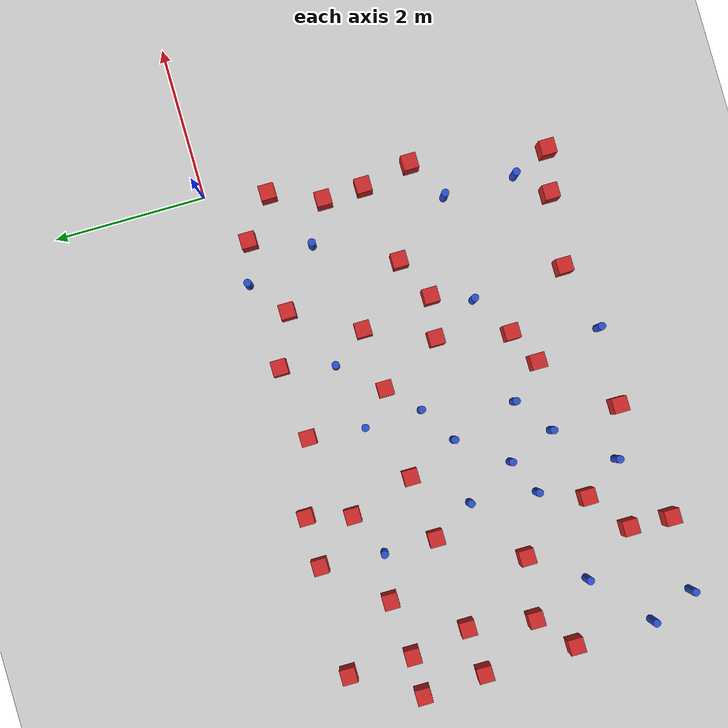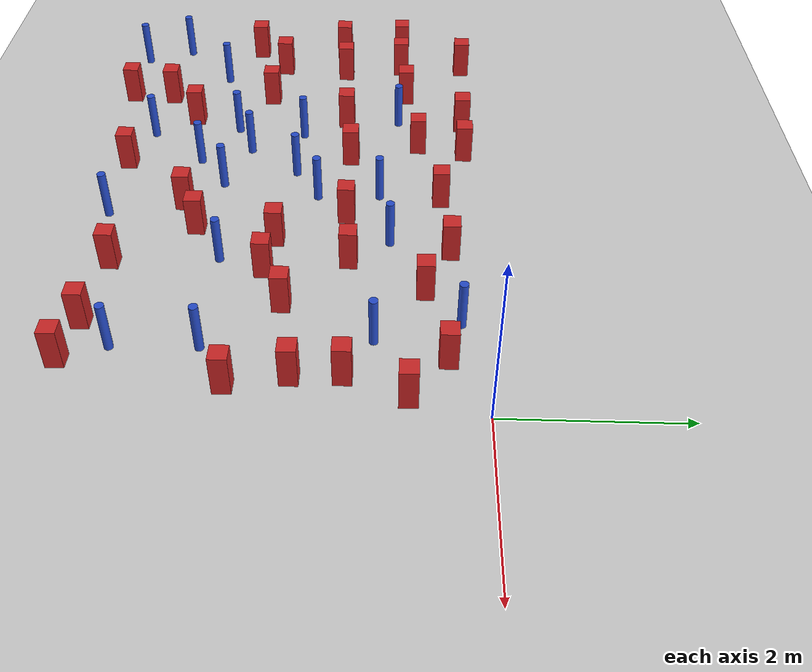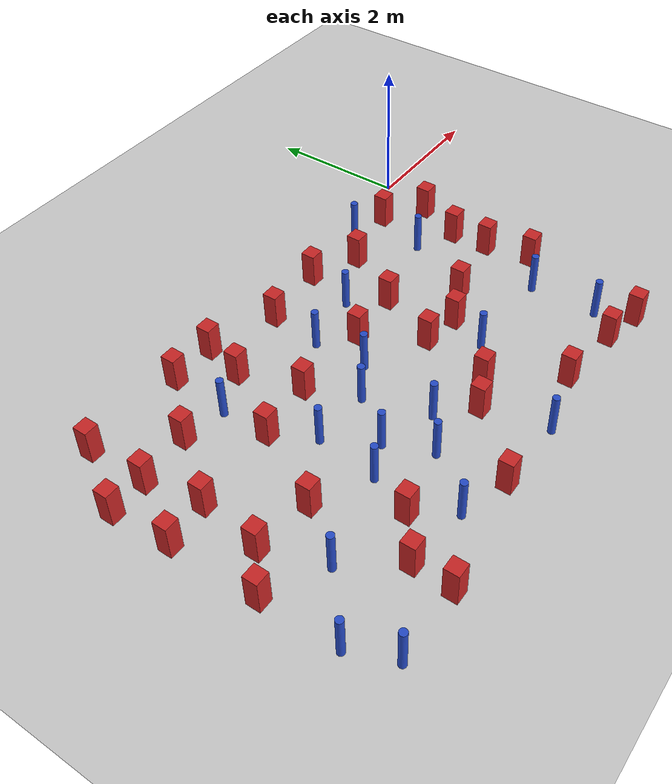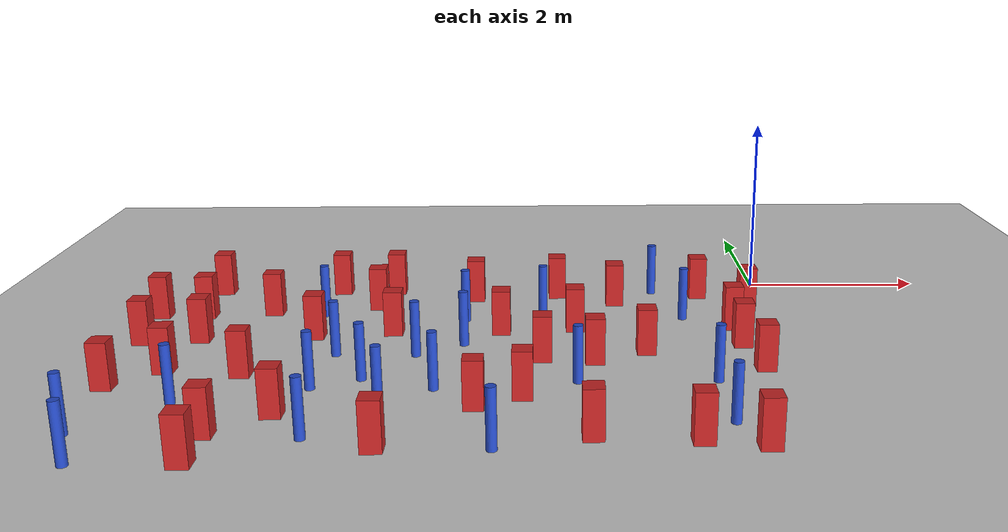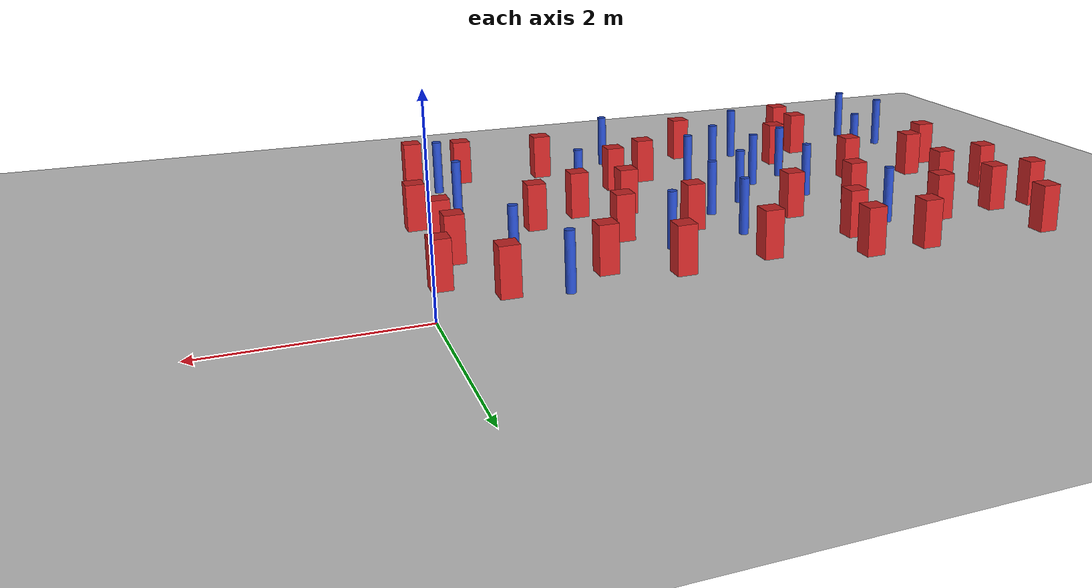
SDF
<sdf version="1.6">
 <world name="default">
  <model name="ground_plane">
   <static>1</static>
   <link name="link">
    <collision name="collision">
     <geometry><plane><normal>0 0 1</normal><size>100 100</size></plane></geometry>
     <surface><friction><ode><mu>100</mu><mu2>50</mu2></ode></friction></surface>
    </collision>
    <visual name="visual">
     <cast_shadows>0</cast_shadows>
     <geometry><plane><normal>0 0 1</normal><size>100 100</size></plane></geometry>
     <material>
      <ambient>1.0 1.0 1.0 1.0</ambient>
      <diffuse>0.8 0.8 0.8 1.0</diffuse>
      <specular>0.01 0.01 0.01 1.000000</specular>
     </material>
    </visual>
   </link>
  </model>
  <model name="square_post_obstacle10">
   <static>true</static>
   <pose>-2.78559075855 -3.33132240373 8.22691968438e-08 7.2212513382e-06 -7.54495500217e-07 2.29674213826e-05</pose>
   <link name="link">
    <pose>0 0 0.25 0 -0 0</pose>
    <inertial>
     <mass>100</mass>
     <inertia>
      <ixx>0.166667</ixx>
      <ixy>0</ixy>
      <ixz>0</ixz>
      <iyy>0.166667</iyy>
      <iyz>0</iyz>
      <izz>0.166667</izz>
     </inertia>
    </inertial>
    <collision name="collision"><geometry><box><size>.2 .2 .5</size></box></geometry></collision>
    <visual name="visual">
     <geometry><box><size>.2 .2 .5</size></box></geometry>
     <material>
      <script><name>Gazebo/Red</name><uri>file://media/materials/scripts/gazebo.material</uri></script>
     </material>
    </visual>
   </link>
  </model>
  <model name="square_post_obstacle14">
   <static>true</static>
   <pose>-6.39441163497 -2.61521872058 8.22691968438e-08 7.2212513382e-06 -7.54495500217e-07 2.29674213826e-05</pose>
   <link name="link">
    <pose>0 0 0.25 0 -0 0</pose>
    <inertial>
     <mass>100</mass>
     <inertia>
      <ixx>0.166667</ixx>
      <ixy>0</ixy>
      <ixz>0</ixz>
      <iyy>0.166667</iyy>
      <iyz>0</iyz>
      <izz>0.166667</izz>
     </inertia>
    </inertial>
    <collision name="collision"><geometry><box><size>.2 .2 .5</size></box></geometry></collision>
    <visual name="visual">
     <geometry><box><size>.2 .2 .5</size></box></geometry>
     <material>
      <script><name>Gazebo/Red</name><uri>file://media/materials/scripts/gazebo.material</uri></script>
     </material>
    </visual>
   </link>
  </model>
  <model name="square_post_obstacle18">
   <static>true</static>
   <pose>-6.41459367247 -0.975588047987 8.22691968438e-08 7.2212513382e-06 -7.54495500217e-07 2.29674213826e-05</pose>
   <link name="link">
    <pose>0 0 0.25 0 -0 0</pose>
    <inertial>
     <mass>100</mass>
     <inertia>
      <ixx>0.166667</ixx>
      <ixy>0</ixy>
      <ixz>0</ixz>
      <iyy>0.166667</iyy>
      <iyz>0</iyz>
      <izz>0.166667</izz>
     </inertia>
    </inertial>
    <collision name="collision"><geometry><box><size>.2 .2 .5</size></box></geometry></collision>
    <visual name="visual">
     <geometry><box><size>.2 .2 .5</size></box></geometry>
     <material>
      <script><name>Gazebo/Red</name><uri>file://media/materials/scripts/gazebo.material</uri></script>
     </material>
    </visual>
   </link>
  </model>
  <model name="pole_obstacle17">
   <static>true</static>
   <pose>-6.59824746613 -4.6418889525 2.88873142074e-08 -9.90536690842e-09 4.60219948965e-07 -1.20965994976e-07</pose>
   <link name="link">
    <pose>0 0 0.3 0 -0 0</pose>
    <inertial>
     <mass>1</mass>
     <inertia><ixx>0.145833</ixx><ixy>0</ixy><ixz>0</ixz><iyy>0.145833</iyy><iyz>0</iyz><izz>0.125</izz></inertia>
    </inertial>
    <collision name="collision">
     <geometry><cylinder><radius>0.05</radius><length>.6</length></cylinder></geometry>
    </collision>
    <visual name="visual">
     <geometry><cylinder><radius>0.05</radius><length>.6</length></cylinder></geometry>
     <material>
      <script><name>Gazebo/Blue</name><uri>file://media/materials/scripts/gazebo.material</uri></script>
     </material>
    </visual>
   </link>
  </model>
  <model name="pole_obstacle19">
   <static>true</static>
   <pose>-4.85081683352 -3.09293828885 2.88873142074e-08 -9.90536690245e-09 4.6021994898e-07 -1.20965994966e-07</pose>
   <link name="link">
    <pose>0 0 0.3 0 -0 0</pose>
    <inertial>
     <mass>1</mass>
     <inertia><ixx>0.145833</ixx><ixy>0</ixy><ixz>0</ixz><iyy>0.145833</iyy><iyz>0</iyz><izz>0.125</izz></inertia>
    </inertial>
    <collision name="collision">
     <geometry><cylinder><radius>0.05</radius><length>.6</length></cylinder></geometry>
    </collision>
    <visual name="visual">
     <geometry><cylinder><radius>0.05</radius><length>.6</length></cylinder></geometry>
     <material>
      <script><name>Gazebo/Blue</name><uri>file://media/materials/scripts/gazebo.material</uri></script>
     </material>
    </visual>
   </link>
  </model>
  <model name="pole_obstacle21">
   <static>true</static>
   <pose>-5.06106699492 -0.991384612624 2.88873142074e-08 -9.90536689779e-09 4.60219948991e-07 -1.20965994959e-07</pose>
   <link name="link">
    <pose>0 0 0.3 0 -0 0</pose>
    <inertial>
     <mass>1</mass>
     <inertia><ixx>0.145833</ixx><ixy>0</ixy><ixz>0</ixz><iyy>0.145833</iyy><iyz>0</iyz><izz>0.125</izz></inertia>
    </inertial>
    <collision name="collision">
     <geometry><cylinder><radius>0.05</radius><length>.6</length></cylinder></geometry>
    </collision>
    <visual name="visual">
     <geometry><cylinder><radius>0.05</radius><length>.6</length></cylinder></geometry>
     <material>
      <script><name>Gazebo/Blue</name><uri>file://media/materials/scripts/gazebo.material</uri></script>
     </material>
    </visual>
   </link>
  </model>
  <model name="square_post_obstacle31">
   <static>true</static>
   <pose>-5.07792433073 -3.68747518192 8.22691968438e-08 7.2212513382e-06 -7.54495500217e-07 2.29674213826e-05</pose>
   <link name="link">
    <pose>0 0 0.25 0 -0 0</pose>
    <inertial>
     <mass>100</mass>
     <inertia>
      <ixx>0.166667</ixx>
      <ixy>0</ixy>
      <ixz>0</ixz>
      <iyy>0.166667</iyy>
      <iyz>0</iyz>
      <izz>0.166667</izz>
     </inertia>
    </inertial>
    <collision name="collision"><geometry><box><size>.2 .2 .5</size></box></geometry></collision>
    <visual name="visual">
     <geometry><box><size>.2 .2 .5</size></box></geometry>
     <material>
      <script><name>Gazebo/Red</name><uri>file://media/materials/scripts/gazebo.material</uri></script>
     </material>
    </visual>
   </link>
  </model>
  <model name="pole_obstacle26">
   <static>true</static>
   <pose>-2.58299701818 -1.05074833231 2.88873142074e-08 -9.90536689395e-09 4.60219949e-07 -1.20965994953e-07</pose>
   <link name="link">
    <pose>0 0 0.3 0 -0 0</pose>
    <inertial>
     <mass>1</mass>
     <inertia><ixx>0.145833</ixx><ixy>0</ixy><ixz>0</ixz><iyy>0.145833</iyy><iyz>0</iyz><izz>0.125</izz></inertia>
    </inertial>
    <collision name="collision">
     <geometry><cylinder><radius>0.05</radius><length>.6</length></cylinder></geometry>
    </collision>
    <visual name="visual">
     <geometry><cylinder><radius>0.05</radius><length>.6</length></cylinder></geometry>
     <material>
      <script><name>Gazebo/Blue</name><uri>file://media/materials/scripts/gazebo.material</uri></script>
     </material>
    </visual>
   </link>
  </model>
  <model name="square_post_obstacle33">
   <static>true</static>
   <pose>-5.59800301135 -4.09717236671 8.22691968438e-08 7.2212513382e-06 -7.54495500217e-07 2.29674213826e-05</pose>
   <link name="link">
    <pose>0 0 0.25 0 -0 0</pose>
    <inertial>
     <mass>100</mass>
     <inertia>
      <ixx>0.166667</ixx>
      <ixy>0</ixy>
      <ixz>0</ixz>
      <iyy>0.166667</iyy>
      <iyz>0</iyz>
      <izz>0.166667</izz>
     </inertia>
    </inertial>
    <collision name="collision"><geometry><box><size>.2 .2 .5</size></box></geometry></collision>
    <visual name="visual">
     <geometry><box><size>.2 .2 .5</size></box></geometry>
     <material>
      <script><name>Gazebo/Red</name><uri>file://media/materials/scripts/gazebo.material</uri></script>
     </material>
    </visual>
   </link>
  </model>
  <model name="square_post_obstacle38">
   <static>true</static>
   <pose>-0.20589223049 -0.816321470257 8.22691968438e-08 7.2212513382e-06 -7.54495500217e-07 2.29674213826e-05</pose>
   <link name="link">
    <pose>0 0 0.25 0 -0 0</pose>
    <inertial>
     <mass>100</mass>
     <inertia>
      <ixx>0.166667</ixx>
      <ixy>0</ixy>
      <ixz>0</ixz>
      <iyy>0.166667</iyy>
      <iyz>0</iyz>
      <izz>0.166667</izz>
     </inertia>
    </inertial>
    <collision name="collision"><geometry><box><size>.2 .2 .5</size></box></geometry></collision>
    <visual name="visual">
     <geometry><box><size>.2 .2 .5</size></box></geometry>
     <material>
      <script><name>Gazebo/Red</name><uri>file://media/materials/scripts/gazebo.material</uri></script>
     </material>
    </visual>
   </link>
  </model>
  <model name="square_post_obstacle40">
   <static>true</static>
   <pose>-4.21648005621 -1.58140720932 8.22691968438e-08 7.2212513382e-06 -7.54495500217e-07 2.29674213826e-05</pose>
   <link name="link">
    <pose>0 0 0.25 0 -0 0</pose>
    <inertial>
     <mass>100</mass>
     <inertia>
      <ixx>0.166667</ixx>
      <ixy>0</ixy>
      <ixz>0</ixz>
      <iyy>0.166667</iyy>
      <iyz>0</iyz>
      <izz>0.166667</izz>
     </inertia>
    </inertial>
    <collision name="collision"><geometry><box><size>.2 .2 .5</size></box></geometry></collision>
    <visual name="visual">
     <geometry><box><size>.2 .2 .5</size></box></geometry>
     <material>
      <script><name>Gazebo/Red</name><uri>file://media/materials/scripts/gazebo.material</uri></script>
     </material>
    </visual>
   </link>
  </model>
  <model name="square_post_obstacle51">
   <static>true</static>
   <pose>-0.63707785975 -4.42804001324 8.22691968438e-08 7.22125133819e-06 -7.54495500217e-07 2.29674213826e-05</pose>
   <link name="link">
    <pose>0 0 0.25 0 -0 0</pose>
    <inertial>
     <mass>100</mass>
     <inertia>
      <ixx>0.166667</ixx>
      <ixy>0</ixy>
      <ixz>0</ixz>
      <iyy>0.166667</iyy>
      <iyz>0</iyz>
      <izz>0.166667</izz>
     </inertia>
    </inertial>
    <collision name="collision"><geometry><box><size>.2 .2 .5</size></box></geometry></collision>
    <visual name="visual">
     <geometry><box><size>.2 .2 .5</size></box></geometry>
     <material>
      <script><name>Gazebo/Red</name><uri>file://media/materials/scripts/gazebo.material</uri></script>
     </material>
    </visual>
   </link>
  </model>
  <model name="pole_obstacle52">
   <static>true</static>
   <pose>-3.9111672363 -2.24839501386 2.88873142074e-08 -9.90536690232e-09 4.6021994898e-07 -1.20965994968e-07</pose>
   <link name="link">
    <pose>0 0 0.3 0 -0 0</pose>
    <inertial>
     <mass>1</mass>
     <inertia><ixx>0.145833</ixx><ixy>0</ixy><ixz>0</ixz><iyy>0.145833</iyy><iyz>0</iyz><izz>0.125</izz></inertia>
    </inertial>
    <collision name="collision">
     <geometry><cylinder><radius>0.05</radius><length>.6</length></cylinder></geometry>
    </collision>
    <visual name="visual">
     <geometry><cylinder><radius>0.05</radius><length>.6</length></cylinder></geometry>
     <material>
      <script><name>Gazebo/Blue</name><uri>file://media/materials/scripts/gazebo.material</uri></script>
     </material>
    </visual>
   </link>
  </model>
  <model name="square_post_obstacle58">
   <static>true</static>
   <pose>-0.335179891042 -2.67567891091 8.22691968438e-08 7.2212513382e-06 -7.54495500217e-07 2.29674213826e-05</pose>
   <link name="link">
    <pose>0 0 0.25 0 -0 0</pose>
    <inertial>
     <mass>100</mass>
     <inertia>
      <ixx>0.166667</ixx>
      <ixy>0</ixy>
      <ixz>0</ixz>
      <iyy>0.166667</iyy>
      <iyz>0</iyz>
      <izz>0.166667</izz>
     </inertia>
    </inertial>
    <collision name="collision"><geometry><box><size>.2 .2 .5</size></box></geometry></collision>
    <visual name="visual">
     <geometry><box><size>.2 .2 .5</size></box></geometry>
     <material>
      <script><name>Gazebo/Red</name><uri>file://media/materials/scripts/gazebo.material</uri></script>
     </material>
    </visual>
   </link>
  </model>
  <model name="square_post_obstacle60">
   <static>true</static>
   <pose>-2.23137943399 -1.51244653684 8.22691968438e-08 7.2212513382e-06 -7.54495500217e-07 2.29674213826e-05</pose>
   <link name="link">
    <pose>0 0 0.25 0 -0 0</pose>
    <inertial>
     <mass>100</mass>
     <inertia>
      <ixx>0.166667</ixx>
      <ixy>0</ixy>
      <ixz>0</ixz>
      <iyy>0.166667</iyy>
      <iyz>0</iyz>
      <izz>0.166667</izz>
     </inertia>
    </inertial>
    <collision name="collision"><geometry><box><size>.2 .2 .5</size></box></geometry></collision>
    <visual name="visual">
     <geometry><box><size>.2 .2 .5</size></box></geometry>
     <material>
      <script><name>Gazebo/Red</name><uri>file://media/materials/scripts/gazebo.material</uri></script>
     </material>
    </visual>
   </link>
  </model>
  <model name="pole_obstacle65">
   <static>true</static>
   <pose>-4.13900676323 -3.48934007749 2.88873142074e-08 -9.90536690245e-09 4.6021994898e-07 -1.20965994966e-07</pose>
   <link name="link">
    <pose>0 0 0.3 0 -0 0</pose>
    <inertial>
     <mass>1</mass>
     <inertia><ixx>0.145833</ixx><ixy>0</ixy><ixz>0</ixz><iyy>0.145833</iyy><iyz>0</iyz><izz>0.125</izz></inertia>
    </inertial>
    <collision name="collision">
     <geometry><cylinder><radius>0.05</radius><length>.6</length></cylinder></geometry>
    </collision>
    <visual name="visual">
     <geometry><cylinder><radius>0.05</radius><length>.6</length></cylinder></geometry>
     <material>
      <script><name>Gazebo/Blue</name><uri>file://media/materials/scripts/gazebo.material</uri></script>
     </material>
    </visual>
   </link>
  </model>
  <model name="square_post_obstacle68">
   <static>true</static>
   <pose>-2.41099590357 -0.352183759905 8.22691968438e-08 7.2212513382e-06 -7.54495500217e-07 2.29674213826e-05</pose>
   <link name="link">
    <pose>0 0 0.25 0 -0 0</pose>
    <inertial>
     <mass>100</mass>
     <inertia>
      <ixx>0.166667</ixx>
      <ixy>0</ixy>
      <ixz>0</ixz>
      <iyy>0.166667</iyy>
      <iyz>0</iyz>
      <izz>0.166667</izz>
     </inertia>
    </inertial>
    <collision name="collision"><geometry><box><size>.2 .2 .5</size></box></geometry></collision>
    <visual name="visual">
     <geometry><box><size>.2 .2 .5</size></box></geometry>
     <material>
      <script><name>Gazebo/Red</name><uri>file://media/materials/scripts/gazebo.material</uri></script>
     </material>
    </visual>
   </link>
  </model>
  <model name="pole_obstacle66">
   <static>true</static>
   <pose>-2.24665163517 -2.98889182283 2.88873142074e-08 -9.90536690232e-09 4.6021994898e-07 -1.20965994968e-07</pose>
   <link name="link">
    <pose>0 0 0.3 0 -0 0</pose>
    <inertial>
     <mass>1</mass>
     <inertia><ixx>0.145833</ixx><ixy>0</ixy><ixz>0</ixz><iyy>0.145833</iyy><iyz>0</iyz><izz>0.125</izz></inertia>
    </inertial>
    <collision name="collision">
     <geometry><cylinder><radius>0.05</radius><length>.6</length></cylinder></geometry>
    </collision>
    <visual name="visual">
     <geometry><cylinder><radius>0.05</radius><length>.6</length></cylinder></geometry>
     <material>
      <script><name>Gazebo/Blue</name><uri>file://media/materials/scripts/gazebo.material</uri></script>
     </material>
    </visual>
   </link>
  </model>
  <model name="square_post_obstacle70">
   <static>true</static>
   <pose>-4.34064216586 -0.150044677516 8.22691968438e-08 7.2212513382e-06 -7.54495500217e-07 2.29674213826e-05</pose>
   <link name="link">
    <pose>0 0 0.25 0 -0 0</pose>
    <inertial>
     <mass>100</mass>
     <inertia>
      <ixx>0.166667</ixx>
      <ixy>0</ixy>
      <ixz>0</ixz>
      <iyy>0.166667</iyy>
      <iyz>0</iyz>
      <izz>0.166667</izz>
     </inertia>
    </inertial>
    <collision name="collision"><geometry><box><size>.2 .2 .5</size></box></geometry></collision>
    <visual name="visual">
     <geometry><box><size>.2 .2 .5</size></box></geometry>
     <material>
      <script><name>Gazebo/Red</name><uri>file://media/materials/scripts/gazebo.material</uri></script>
     </material>
    </visual>
   </link>
  </model>
  <model name="square_post_obstacle81">
   <static>true</static>
   <pose>-3.373905149 -0.453993985723 8.22691968438e-08 7.22125133819e-06 -7.54495500217e-07 2.29674213826e-05</pose>
   <link name="link">
    <pose>0 0 0.25 0 -0 0</pose>
    <inertial>
     <mass>100</mass>
     <inertia>
      <ixx>0.166667</ixx>
      <ixy>0</ixy>
      <ixz>0</ixz>
      <iyy>0.166667</iyy>
      <iyz>0</iyz>
      <izz>0.166667</izz>
     </inertia>
    </inertial>
    <collision name="collision"><geometry><box><size>.2 .2 .5</size></box></geometry></collision>
    <visual name="visual">
     <geometry><box><size>.2 .2 .5</size></box></geometry>
     <material>
      <script><name>Gazebo/Red</name><uri>file://media/materials/scripts/gazebo.material</uri></script>
     </material>
    </visual>
   </link>
  </model>
  <model name="square_post_obstacle85">
   <static>true</static>
   <pose>-3.23977587214 -3.55142330103 8.22691968438e-08 7.2212513382e-06 -7.54495500217e-07 2.29674213826e-05</pose>
   <link name="link">
    <pose>0 0 0.25 0 -0 0</pose>
    <inertial>
     <mass>100</mass>
     <inertia>
      <ixx>0.166667</ixx>
      <ixy>0</ixy>
      <ixz>0</ixz>
      <iyy>0.166667</iyy>
      <iyz>0</iyz>
      <izz>0.166667</izz>
     </inertia>
    </inertial>
    <collision name="collision"><geometry><box><size>.2 .2 .5</size></box></geometry></collision>
    <visual name="visual">
     <geometry><box><size>.2 .2 .5</size></box></geometry>
     <material>
      <script><name>Gazebo/Red</name><uri>file://media/materials/scripts/gazebo.material</uri></script>
     </material>
    </visual>
   </link>
  </model>
  <model name="square_post_obstacle93">
   <static>true</static>
   <pose>-6.8806758111 -1.7991468774 8.22691968438e-08 7.2212513382e-06 -7.54495500217e-07 2.29674213826e-05</pose>
   <link name="link">
    <pose>0 0 0.25 0 -0 0</pose>
    <inertial>
     <mass>100</mass>
     <inertia>
      <ixx>0.166667</ixx>
      <ixy>0</ixy>
      <ixz>0</ixz>
      <iyy>0.166667</iyy>
      <iyz>0</iyz>
      <izz>0.166667</izz>
     </inertia>
    </inertial>
    <collision name="collision"><geometry><box><size>.2 .2 .5</size></box></geometry></collision>
    <visual name="visual">
     <geometry><box><size>.2 .2 .5</size></box></geometry>
     <material>
      <script><name>Gazebo/Red</name><uri>file://media/materials/scripts/gazebo.material</uri></script>
     </material>
    </visual>
   </link>
  </model>
  <model name="square_post_obstacle99">
   <static>true</static>
   <pose>-6.42279671032 -0.124154419328 8.22691968438e-08 7.2212513382e-06 -7.54495500217e-07 2.29674213826e-05</pose>
   <link name="link">
    <pose>0 0 0.25 0 -0 0</pose>
    <inertial>
     <mass>100</mass>
     <inertia>
      <ixx>0.166667</ixx>
      <ixy>0</ixy>
      <ixz>0</ixz>
      <iyy>0.166667</iyy>
      <iyz>0</iyz>
      <izz>0.166667</izz>
     </inertia>
    </inertial>
    <collision name="collision"><geometry><box><size>.2 .2 .5</size></box></geometry></collision>
    <visual name="visual">
     <geometry><box><size>.2 .2 .5</size></box></geometry>
     <material>
      <script><name>Gazebo/Red</name><uri>file://media/materials/scripts/gazebo.material</uri></script>
     </material>
    </visual>
   </link>
  </model>
  <model name="pole_obstacle113">
   <static>true</static>
   <pose>-3.4517055459 -1.19593047552 2.88873142074e-08 -9.90536691123e-09 4.60219948959e-07 -1.20965994982e-07</pose>
   <link name="link">
    <pose>0 0 0.3 0 -0 0</pose>
    <inertial>
     <mass>1</mass>
     <inertia><ixx>0.145833</ixx><ixy>0</ixy><ixz>0</ixz><iyy>0.145833</iyy><iyz>0</iyz><izz>0.125</izz></inertia>
    </inertial>
    <collision name="collision">
     <geometry><cylinder><radius>0.05</radius><length>.6</length></cylinder></geometry>
    </collision>
    <visual name="visual">
     <geometry><cylinder><radius>0.05</radius><length>.6</length></cylinder></geometry>
     <material>
      <script><name>Gazebo/Blue</name><uri>file://media/materials/scripts/gazebo.material</uri></script>
     </material>
    </visual>
   </link>
  </model>
  <model name="square_post_obstacle100">
   <static>true</static>
   <pose>-0.733383960362 -0.41028231656 8.22691968438e-08 7.2212513382e-06 -7.54495500217e-07 2.29674213826e-05</pose>
   <link name="link">
    <pose>0 0 0.25 0 -0 0</pose>
    <inertial>
     <mass>100</mass>
     <inertia>
      <ixx>0.166667</ixx>
      <ixy>0</ixy>
      <ixz>0</ixz>
      <iyy>0.166667</iyy>
      <iyz>0</iyz>
      <izz>0.166667</izz>
     </inertia>
    </inertial>
    <collision name="collision"><geometry><box><size>.2 .2 .5</size></box></geometry></collision>
    <visual name="visual">
     <geometry><box><size>.2 .2 .5</size></box></geometry>
     <material>
      <script><name>Gazebo/Red</name><uri>file://media/materials/scripts/gazebo.material</uri></script>
     </material>
    </visual>
   </link>
  </model>
  <model name="pole_obstacle118">
   <static>true</static>
   <pose>-0.846279114026 -3.94113217549 2.88873142074e-08 -9.90536689636e-09 4.60219948994e-07 -1.20965994958e-07</pose>
   <link name="link">
    <pose>0 0 0.3 0 -0 0</pose>
    <inertial>
     <mass>1</mass>
     <inertia><ixx>0.145833</ixx><ixy>0</ixy><ixz>0</ixz><iyy>0.145833</iyy><iyz>0</iyz><izz>0.125</izz></inertia>
    </inertial>
    <collision name="collision">
     <geometry><cylinder><radius>0.05</radius><length>.6</length></cylinder></geometry>
    </collision>
    <visual name="visual">
     <geometry><cylinder><radius>0.05</radius><length>.6</length></cylinder></geometry>
     <material>
      <script><name>Gazebo/Blue</name><uri>file://media/materials/scripts/gazebo.material</uri></script>
     </material>
    </visual>
   </link>
  </model>
  <model name="square_post_obstacle103">
   <static>true</static>
   <pose>-3.04043513643 -1.57700565032 8.22691968438e-08 7.2212513382e-06 -7.54495500217e-07 2.29674213826e-05</pose>
   <link name="link">
    <pose>0 0 0.25 0 -0 0</pose>
    <inertial>
     <mass>100</mass>
     <inertia>
      <ixx>0.166667</ixx>
      <ixy>0</ixy>
      <ixz>0</ixz>
      <iyy>0.166667</iyy>
      <iyz>0</iyz>
      <izz>0.166667</izz>
     </inertia>
    </inertial>
    <collision name="collision"><geometry><box><size>.2 .2 .5</size></box></geometry></collision>
    <visual name="visual">
     <geometry><box><size>.2 .2 .5</size></box></geometry>
     <material>
      <script><name>Gazebo/Red</name><uri>file://media/materials/scripts/gazebo.material</uri></script>
     </material>
    </visual>
   </link>
  </model>
  <model name="pole_obstacle119">
   <static>true</static>
   <pose>-6.09650090413 -3.4024701867 2.88873142074e-08 -9.90536690245e-09 4.6021994898e-07 -1.20965994966e-07</pose>
   <link name="link">
    <pose>0 0 0.3 0 -0 0</pose>
    <inertial>
     <mass>1</mass>
     <inertia><ixx>0.145833</ixx><ixy>0</ixy><ixz>0</ixz><iyy>0.145833</iyy><iyz>0</iyz><izz>0.125</izz></inertia>
    </inertial>
    <collision name="collision">
     <geometry><cylinder><radius>0.05</radius><length>.6</length></cylinder></geometry>
    </collision>
    <visual name="visual">
     <geometry><cylinder><radius>0.05</radius><length>.6</length></cylinder></geometry>
     <material>
      <script><name>Gazebo/Blue</name><uri>file://media/materials/scripts/gazebo.material</uri></script>
     </material>
    </visual>
   </link>
  </model>
  <model name="square_post_obstacle112">
   <static>true</static>
   <pose>-0.456831787446 -2.02029621897 8.22691968438e-08 7.2212513382e-06 -7.54495500217e-07 2.29674213826e-05</pose>
   <link name="link">
    <pose>0 0 0.25 0 -0 0</pose>
    <inertial>
     <mass>100</mass>
     <inertia>
      <ixx>0.166667</ixx>
      <ixy>0</ixy>
      <ixz>0</ixz>
      <iyy>0.166667</iyy>
      <iyz>0</iyz>
      <izz>0.166667</izz>
     </inertia>
    </inertial>
    <collision name="collision"><geometry><box><size>.2 .2 .5</size></box></geometry></collision>
    <visual name="visual">
     <geometry><box><size>.2 .2 .5</size></box></geometry>
     <material>
      <script><name>Gazebo/Red</name><uri>file://media/materials/scripts/gazebo.material</uri></script>
     </material>
    </visual>
   </link>
  </model>
  <model name="square_post_obstacle113">
   <static>true</static>
   <pose>-4.0618930929 -4.40089413176 8.22691968438e-08 7.2212513382e-06 -7.54495500217e-07 2.29674213826e-05</pose>
   <link name="link">
    <pose>0 0 0.25 0 -0 0</pose>
    <inertial>
     <mass>100</mass>
     <inertia>
      <ixx>0.166667</ixx>
      <ixy>0</ixy>
      <ixz>0</ixz>
      <iyy>0.166667</iyy>
      <iyz>0</iyz>
      <izz>0.166667</izz>
     </inertia>
    </inertial>
    <collision name="collision"><geometry><box><size>.2 .2 .5</size></box></geometry></collision>
    <visual name="visual">
     <geometry><box><size>.2 .2 .5</size></box></geometry>
     <material>
      <script><name>Gazebo/Red</name><uri>file://media/materials/scripts/gazebo.material</uri></script>
     </material>
    </visual>
   </link>
  </model>
  <model name="pole_obstacle133">
   <static>true</static>
   <pose>-3.03694671494 -4.43862119435 2.88873142074e-08 -9.90536689859e-09 4.60219948989e-07 -1.20965994961e-07</pose>
   <link name="link">
    <pose>0 0 0.3 0 -0 0</pose>
    <inertial>
     <mass>1</mass>
     <inertia><ixx>0.145833</ixx><ixy>0</ixy><ixz>0</ixz><iyy>0.145833</iyy><iyz>0</iyz><izz>0.125</izz></inertia>
    </inertial>
    <collision name="collision">
     <geometry><cylinder><radius>0.05</radius><length>.6</length></cylinder></geometry>
    </collision>
    <visual name="visual">
     <geometry><cylinder><radius>0.05</radius><length>.6</length></cylinder></geometry>
     <material>
      <script><name>Gazebo/Blue</name><uri>file://media/materials/scripts/gazebo.material</uri></script>
     </material>
    </visual>
   </link>
  </model>
  <model name="square_post_obstacle116">
   <static>true</static>
   <pose>-2.15378637721 -4.21434150069 8.22691968438e-08 7.22125133819e-06 -7.54495500217e-07 2.29674213826e-05</pose>
   <link name="link">
    <pose>0 0 0.25 0 -0 0</pose>
    <inertial>
     <mass>100</mass>
     <inertia>
      <ixx>0.166667</ixx>
      <ixy>0</ixy>
      <ixz>0</ixz>
      <iyy>0.166667</iyy>
      <iyz>0</iyz>
      <izz>0.166667</izz>
     </inertia>
    </inertial>
    <collision name="collision"><geometry><box><size>.2 .2 .5</size></box></geometry></collision>
    <visual name="visual">
     <geometry><box><size>.2 .2 .5</size></box></geometry>
     <material>
      <script><name>Gazebo/Red</name><uri>file://media/materials/scripts/gazebo.material</uri></script>
     </material>
    </visual>
   </link>
  </model>
  <model name="square_post_obstacle120">
   <static>true</static>
   <pose>-4.99486420889 -0.154179294379 8.22691968438e-08 7.2212513382e-06 -7.54495500217e-07 2.29674213826e-05</pose>
   <link name="link">
    <pose>0 0 0.25 0 -0 0</pose>
    <inertial>
     <mass>100</mass>
     <inertia>
      <ixx>0.166667</ixx>
      <ixy>0</ixy>
      <ixz>0</ixz>
      <iyy>0.166667</iyy>
      <iyz>0</iyz>
      <izz>0.166667</izz>
     </inertia>
    </inertial>
    <collision name="collision"><geometry><box><size>.2 .2 .5</size></box></geometry></collision>
    <visual name="visual">
     <geometry><box><size>.2 .2 .5</size></box></geometry>
     <material>
      <script><name>Gazebo/Red</name><uri>file://media/materials/scripts/gazebo.material</uri></script>
     </material>
    </visual>
   </link>
  </model>
  <model name="square_post_obstacle122">
   <static>true</static>
   <pose>-4.48709459898 -0.731904388977 8.22691968438e-08 7.2212513382e-06 -7.54495500217e-07 2.29674213826e-05</pose>
   <link name="link">
    <pose>0 0 0.25 0 -0 0</pose>
    <inertial>
     <mass>100</mass>
     <inertia>
      <ixx>0.166667</ixx>
      <ixy>0</ixy>
      <ixz>0</ixz>
      <iyy>0.166667</iyy>
      <iyz>0</iyz>
      <izz>0.166667</izz>
     </inertia>
    </inertial>
    <collision name="collision"><geometry><box><size>.2 .2 .5</size></box></geometry></collision>
    <visual name="visual">
     <geometry><box><size>.2 .2 .5</size></box></geometry>
     <material>
      <script><name>Gazebo/Red</name><uri>file://media/materials/scripts/gazebo.material</uri></script>
     </material>
    </visual>
   </link>
  </model>
  <model name="square_post_obstacle131">
   <static>true</static>
   <pose>-6.26810164553 -1.74651961537 8.22691968438e-08 7.2212513382e-06 -7.54495500217e-07 2.29674213826e-05</pose>
   <link name="link">
    <pose>0 0 0.25 0 -0 0</pose>
    <inertial>
     <mass>100</mass>
     <inertia>
      <ixx>0.166667</ixx>
      <ixy>0</ixy>
      <ixz>0</ixz>
      <iyy>0.166667</iyy>
      <iyz>0</iyz>
      <izz>0.166667</izz>
     </inertia>
    </inertial>
    <collision name="collision"><geometry><box><size>.2 .2 .5</size></box></geometry></collision>
    <visual name="visual">
     <geometry><box><size>.2 .2 .5</size></box></geometry>
     <material>
      <script><name>Gazebo/Red</name><uri>file://media/materials/scripts/gazebo.material</uri></script>
     </material>
    </visual>
   </link>
  </model>
  <model name="pole_obstacle146">
   <static>true</static>
   <pose>-1.2682585925 -0.261019161581 2.88873142074e-08 -9.90536690032e-09 4.60219948985e-07 -1.20965994964e-07</pose>
   <link name="link">
    <pose>0 0 0.3 0 -0 0</pose>
    <inertial>
     <mass>1</mass>
     <inertia><ixx>0.145833</ixx><ixy>0</ixy><ixz>0</ixz><iyy>0.145833</iyy><iyz>0</iyz><izz>0.125</izz></inertia>
    </inertial>
    <collision name="collision">
     <geometry><cylinder><radius>0.05</radius><length>.6</length></cylinder></geometry>
    </collision>
    <visual name="visual">
     <geometry><cylinder><radius>0.05</radius><length>.6</length></cylinder></geometry>
     <material>
      <script><name>Gazebo/Blue</name><uri>file://media/materials/scripts/gazebo.material</uri></script>
     </material>
    </visual>
   </link>
  </model>
  <model name="square_post_obstacle140">
   <static>true</static>
   <pose>-5.05615505501 -1.6763240564 8.22691968438e-08 7.2212513382e-06 -7.54495500217e-07 2.29674213826e-05</pose>
   <link name="link">
    <pose>0 0 0.25 0 -0 0</pose>
    <inertial>
     <mass>100</mass>
     <inertia>
      <ixx>0.166667</ixx>
      <ixy>0</ixy>
      <ixz>0</ixz>
      <iyy>0.166667</iyy>
      <iyz>0</iyz>
      <izz>0.166667</izz>
     </inertia>
    </inertial>
    <collision name="collision"><geometry><box><size>.2 .2 .5</size></box></geometry></collision>
    <visual name="visual">
     <geometry><box><size>.2 .2 .5</size></box></geometry>
     <material>
      <script><name>Gazebo/Red</name><uri>file://media/materials/scripts/gazebo.material</uri></script>
     </material>
    </visual>
   </link>
  </model>
  <model name="square_post_obstacle141">
   <static>true</static>
   <pose>-5.66219567227 -0.897365612823 8.22691968438e-08 7.2212513382e-06 -7.54495500217e-07 2.29674213826e-05</pose>
   <link name="link">
    <pose>0 0 0.25 0 -0 0</pose>
    <inertial>
     <mass>100</mass>
     <inertia>
      <ixx>0.166667</ixx>
      <ixy>0</ixy>
      <ixz>0</ixz>
      <iyy>0.166667</iyy>
      <iyz>0</iyz>
      <izz>0.166667</izz>
     </inertia>
    </inertial>
    <collision name="collision"><geometry><box><size>.2 .2 .5</size></box></geometry></collision>
    <visual name="visual">
     <geometry><box><size>.2 .2 .5</size></box></geometry>
     <material>
      <script><name>Gazebo/Red</name><uri>file://media/materials/scripts/gazebo.material</uri></script>
     </material>
    </visual>
   </link>
  </model>
  <model name="pole_obstacle156">
   <static>true</static>
   <pose>-4.74542522033 -2.22318860844 2.88873142074e-08 -9.90536690245e-09 4.6021994898e-07 -1.20965994966e-07</pose>
   <link name="link">
    <pose>0 0 0.3 0 -0 0</pose>
    <inertial>
     <mass>1</mass>
     <inertia><ixx>0.145833</ixx><ixy>0</ixy><ixz>0</ixz><iyy>0.145833</iyy><iyz>0</iyz><izz>0.125</izz></inertia>
    </inertial>
    <collision name="collision">
     <geometry><cylinder><radius>0.05</radius><length>.6</length></cylinder></geometry>
    </collision>
    <visual name="visual">
     <geometry><cylinder><radius>0.05</radius><length>.6</length></cylinder></geometry>
     <material>
      <script><name>Gazebo/Blue</name><uri>file://media/materials/scripts/gazebo.material</uri></script>
     </material>
    </visual>
   </link>
  </model>
  <model name="pole_obstacle157">
   <static>true</static>
   <pose>-0.998838634041 -1.1870413958 2.88873142074e-08 -9.90536689826e-09 4.6021994899e-07 -1.20965994961e-07</pose>
   <link name="link">
    <pose>0 0 0.3 0 -0 0</pose>
    <inertial>
     <mass>1</mass>
     <inertia><ixx>0.145833</ixx><ixy>0</ixy><ixz>0</ixz><iyy>0.145833</iyy><iyz>0</iyz><izz>0.125</izz></inertia>
    </inertial>
    <collision name="collision">
     <geometry><cylinder><radius>0.05</radius><length>.6</length></cylinder></geometry>
    </collision>
    <visual name="visual">
     <geometry><cylinder><radius>0.05</radius><length>.6</length></cylinder></geometry>
     <material>
      <script><name>Gazebo/Blue</name><uri>file://media/materials/scripts/gazebo.material</uri></script>
     </material>
    </visual>
   </link>
  </model>
  <model name="square_post_obstacle155">
   <static>true</static>
   <pose>-1.19642561414 -4.31089701835 8.22691968438e-08 7.2212513382e-06 -7.54495500217e-07 2.29674213826e-05</pose>
   <link name="link">
    <pose>0 0 0.25 0 -0 0</pose>
    <inertial>
     <mass>100</mass>
     <inertia>
      <ixx>0.166667</ixx>
      <ixy>0</ixy>
      <ixz>0</ixz>
      <iyy>0.166667</iyy>
      <iyz>0</iyz>
      <izz>0.166667</izz>
     </inertia>
    </inertial>
    <collision name="collision"><geometry><box><size>.2 .2 .5</size></box></geometry></collision>
    <visual name="visual">
     <geometry><box><size>.2 .2 .5</size></box></geometry>
     <material>
      <script><name>Gazebo/Red</name><uri>file://media/materials/scripts/gazebo.material</uri></script>
     </material>
    </visual>
   </link>
  </model>
  <model name="pole_obstacle176">
   <static>true</static>
   <pose>-4.72262731436 -4.18939869793 2.88873142074e-08 -9.90536690842e-09 4.60219948965e-07 -1.20965994976e-07</pose>
   <link name="link">
    <pose>0 0 0.3 0 -0 0</pose>
    <inertial>
     <mass>1</mass>
     <inertia><ixx>0.145833</ixx><ixy>0</ixy><ixz>0</ixz><iyy>0.145833</iyy><iyz>0</iyz><izz>0.125</izz></inertia>
    </inertial>
    <collision name="collision">
     <geometry><cylinder><radius>0.05</radius><length>.6</length></cylinder></geometry>
    </collision>
    <visual name="visual">
     <geometry><cylinder><radius>0.05</radius><length>.6</length></cylinder></geometry>
     <material>
      <script><name>Gazebo/Blue</name><uri>file://media/materials/scripts/gazebo.material</uri></script>
     </material>
    </visual>
   </link>
  </model>
  <model name="pole_obstacle177">
   <static>true</static>
   <pose>-6.83577865843 -4.05888780131 2.88873142074e-08 -9.90536690842e-09 4.60219948965e-07 -1.20965994976e-07</pose>
   <link name="link">
    <pose>0 0 0.3 0 -0 0</pose>
    <inertial>
     <mass>1</mass>
     <inertia><ixx>0.145833</ixx><ixy>0</ixy><ixz>0</ixz><iyy>0.145833</iyy><iyz>0</iyz><izz>0.125</izz></inertia>
    </inertial>
    <collision name="collision">
     <geometry><cylinder><radius>0.05</radius><length>.6</length></cylinder></geometry>
    </collision>
    <visual name="visual">
     <geometry><cylinder><radius>0.05</radius><length>.6</length></cylinder></geometry>
     <material>
      <script><name>Gazebo/Blue</name><uri>file://media/materials/scripts/gazebo.material</uri></script>
     </material>
    </visual>
   </link>
  </model>
  <model name="square_post_obstacle166">
   <static>true</static>
   <pose>-2.05587201375 -2.46492420054 8.22691968438e-08 7.2212513382e-06 -7.54495500217e-07 2.29674213826e-05</pose>
   <link name="link">
    <pose>0 0 0.25 0 -0 0</pose>
    <inertial>
     <mass>100</mass>
     <inertia>
      <ixx>0.166667</ixx>
      <ixy>0</ixy>
      <ixz>0</ixz>
      <iyy>0.166667</iyy>
      <iyz>0</iyz>
      <izz>0.166667</izz>
     </inertia>
    </inertial>
    <collision name="collision"><geometry><box><size>.2 .2 .5</size></box></geometry></collision>
    <visual name="visual">
     <geometry><box><size>.2 .2 .5</size></box></geometry>
     <material>
      <script><name>Gazebo/Red</name><uri>file://media/materials/scripts/gazebo.material</uri></script>
     </material>
    </visual>
   </link>
  </model>
  <model name="square_post_obstacle170">
   <static>true</static>
   <pose>-2.59328894972 -2.38189346071 8.22691968438e-08 7.2212513382e-06 -7.54495500217e-07 2.29674213826e-05</pose>
   <link name="link">
    <pose>0 0 0.25 0 -0 0</pose>
    <inertial>
     <mass>100</mass>
     <inertia>
      <ixx>0.166667</ixx>
      <ixy>0</ixy>
      <ixz>0</ixz>
      <iyy>0.166667</iyy>
      <iyz>0</iyz>
      <izz>0.166667</izz>
     </inertia>
    </inertial>
    <collision name="collision"><geometry><box><size>.2 .2 .5</size></box></geometry></collision>
    <visual name="visual">
     <geometry><box><size>.2 .2 .5</size></box></geometry>
     <material>
      <script><name>Gazebo/Red</name><uri>file://media/materials/scripts/gazebo.material</uri></script>
     </material>
    </visual>
   </link>
  </model>
  <model name="pole_obstacle185">
   <static>true</static>
   <pose>-0.858532879096 -2.99408094825 2.88873142074e-08 -9.90536689636e-09 4.60219948994e-07 -1.20965994958e-07</pose>
   <link name="link">
    <pose>0 0 0.3 0 -0 0</pose>
    <inertial>
     <mass>1</mass>
     <inertia><ixx>0.145833</ixx><ixy>0</ixy><ixz>0</ixz><iyy>0.145833</iyy><iyz>0</iyz><izz>0.125</izz></inertia>
    </inertial>
    <collision name="collision">
     <geometry><cylinder><radius>0.05</radius><length>.6</length></cylinder></geometry>
    </collision>
    <visual name="visual">
     <geometry><cylinder><radius>0.05</radius><length>.6</length></cylinder></geometry>
     <material>
      <script><name>Gazebo/Blue</name><uri>file://media/materials/scripts/gazebo.material</uri></script>
     </material>
    </visual>
   </link>
  </model>
  <model name="square_post_obstacle177">
   <static>true</static>
   <pose>-0.479419958201 -1.48234817366 8.22691968438e-08 7.2212513382e-06 -7.54495500217e-07 2.29674213826e-05</pose>
   <link name="link">
    <pose>0 0 0.25 0 -0 0</pose>
    <inertial>
     <mass>100</mass>
     <inertia>
      <ixx>0.166667</ixx>
      <ixy>0</ixy>
      <ixz>0</ixz>
      <iyy>0.166667</iyy>
      <iyz>0</iyz>
      <izz>0.166667</izz>
     </inertia>
    </inertial>
    <collision name="collision"><geometry><box><size>.2 .2 .5</size></box></geometry></collision>
    <visual name="visual">
     <geometry><box><size>.2 .2 .5</size></box></geometry>
     <material>
      <script><name>Gazebo/Red</name><uri>file://media/materials/scripts/gazebo.material</uri></script>
     </material>
    </visual>
   </link>
  </model>
  <model name="square_post_obstacle179">
   <static>true</static>
   <pose>-5.60254169119 -2.72445294375 8.22691968438e-08 7.2212513382e-06 -7.54495500217e-07 2.29674213826e-05</pose>
   <link name="link">
    <pose>0 0 0.25 0 -0 0</pose>
    <inertial>
     <mass>100</mass>
     <inertia>
      <ixx>0.166667</ixx>
      <ixy>0</ixy>
      <ixz>0</ixz>
      <iyy>0.166667</iyy>
      <iyz>0</iyz>
      <izz>0.166667</izz>
     </inertia>
    </inertial>
    <collision name="collision"><geometry><box><size>.2 .2 .5</size></box></geometry></collision>
    <visual name="visual">
     <geometry><box><size>.2 .2 .5</size></box></geometry>
     <material>
      <script><name>Gazebo/Red</name><uri>file://media/materials/scripts/gazebo.material</uri></script>
     </material>
    </visual>
   </link>
  </model>
  <model name="square_post_obstacle180">
   <static>true</static>
   <pose>-6.85447156132 -3.015117387 8.22691968438e-08 7.2212513382e-06 -7.54495500217e-07 2.29674213826e-05</pose>
   <link name="link">
    <pose>0 0 0.25 0 -0 0</pose>
    <inertial>
     <mass>100</mass>
     <inertia>
      <ixx>0.166667</ixx>
      <ixy>0</ixy>
      <ixz>0</ixz>
      <iyy>0.166667</iyy>
      <iyz>0</iyz>
      <izz>0.166667</izz>
     </inertia>
    </inertial>
    <collision name="collision"><geometry><box><size>.2 .2 .5</size></box></geometry></collision>
    <visual name="visual">
     <geometry><box><size>.2 .2 .5</size></box></geometry>
     <material>
      <script><name>Gazebo/Red</name><uri>file://media/materials/scripts/gazebo.material</uri></script>
     </material>
    </visual>
   </link>
  </model>
  <model name="square_post_obstacle183">
   <static>true</static>
   <pose>-1.5038039226 -2.20476059936 8.22691968438e-08 7.2212513382e-06 -7.54495500217e-07 2.29674213826e-05</pose>
   <link name="link">
    <pose>0 0 0.25 0 -0 0</pose>
    <inertial>
     <mass>100</mass>
     <inertia>
      <ixx>0.166667</ixx>
      <ixy>0</ixy>
      <ixz>0</ixz>
      <iyy>0.166667</iyy>
      <iyz>0</iyz>
      <izz>0.166667</izz>
     </inertia>
    </inertial>
    <collision name="collision"><geometry><box><size>.2 .2 .5</size></box></geometry></collision>
    <visual name="visual">
     <geometry><box><size>.2 .2 .5</size></box></geometry>
     <material>
      <script><name>Gazebo/Red</name><uri>file://media/materials/scripts/gazebo.material</uri></script>
     </material>
    </visual>
   </link>
  </model>
  <model name="square_post_obstacle188">
   <static>true</static>
   <pose>-1.74124267009 -0.645030792036 8.22691968438e-08 7.2212513382e-06 -7.54495500217e-07 2.29674213826e-05</pose>
   <link name="link">
    <pose>0 0 0.25 0 -0 0</pose>
    <inertial>
     <mass>100</mass>
     <inertia>
      <ixx>0.166667</ixx>
      <ixy>0</ixy>
      <ixz>0</ixz>
      <iyy>0.166667</iyy>
      <iyz>0</iyz>
      <izz>0.166667</izz>
     </inertia>
    </inertial>
    <collision name="collision"><geometry><box><size>.2 .2 .5</size></box></geometry></collision>
    <visual name="visual">
     <geometry><box><size>.2 .2 .5</size></box></geometry>
     <material>
      <script><name>Gazebo/Red</name><uri>file://media/materials/scripts/gazebo.material</uri></script>
     </material>
    </visual>
   </link>
  </model>
  <model name="pole_obstacle198">
   <static>true</static>
   <pose>-3.6525576259 -3.13120851392 2.88873142074e-08 -9.90536689597e-09 4.60219948995e-07 -1.20965994957e-07</pose>
   <link name="link">
    <pose>0 0 0.3 0 -0 0</pose>
    <inertial>
     <mass>1</mass>
     <inertia><ixx>0.145833</ixx><ixy>0</ixy><ixz>0</ixz><iyy>0.145833</iyy><iyz>0</iyz><izz>0.125</izz></inertia>
    </inertial>
    <collision name="collision">
     <geometry><cylinder><radius>0.05</radius><length>.6</length></cylinder></geometry>
    </collision>
    <visual name="visual">
     <geometry><cylinder><radius>0.05</radius><length>.6</length></cylinder></geometry>
     <material>
      <script><name>Gazebo/Blue</name><uri>file://media/materials/scripts/gazebo.material</uri></script>
     </material>
    </visual>
   </link>
  </model>
  <model name="pole_obstacle200">
   <static>true</static>
   <pose>-4.38546171345 -2.87468717356 2.88873142074e-08 -9.90536690245e-09 4.6021994898e-07 -1.20965994966e-07</pose>
   <link name="link">
    <pose>0 0 0.3 0 -0 0</pose>
    <inertial>
     <mass>1</mass>
     <inertia><ixx>0.145833</ixx><ixy>0</ixy><ixz>0</ixz><iyy>0.145833</iyy><iyz>0</iyz><izz>0.125</izz></inertia>
    </inertial>
    <collision name="collision">
     <geometry><cylinder><radius>0.05</radius><length>.6</length></cylinder></geometry>
    </collision>
    <visual name="visual">
     <geometry><cylinder><radius>0.05</radius><length>.6</length></cylinder></geometry>
     <material>
      <script><name>Gazebo/Blue</name><uri>file://media/materials/scripts/gazebo.material</uri></script>
     </material>
    </visual>
   </link>
  </model>
  <model name="square_post_obstacle203">
   <static>true</static>
   <pose>-6.93106525175 -0.97141643589 8.22691968438e-08 7.2212513382e-06 -7.54495500217e-07 2.29674213826e-05</pose>
   <link name="link">
    <pose>0 0 0.25 0 -0 0</pose>
    <inertial>
     <mass>100</mass>
     <inertia>
      <ixx>0.166667</ixx>
      <ixy>0</ixy>
      <ixz>0</ixz>
      <iyy>0.166667</iyy>
      <iyz>0</iyz>
      <izz>0.166667</izz>
     </inertia>
    </inertial>
    <collision name="collision"><geometry><box><size>.2 .2 .5</size></box></geometry></collision>
    <visual name="visual">
     <geometry><box><size>.2 .2 .5</size></box></geometry>
     <material>
      <script><name>Gazebo/Red</name><uri>file://media/materials/scripts/gazebo.material</uri></script>
     </material>
    </visual>
   </link>
  </model>
  <model name="square_post_obstacle208">
   <static>true</static>
   <pose>-5.61975976216 -4.64414932452 8.22691968438e-08 7.22125133819e-06 -7.54495500217e-07 2.29674213826e-05</pose>
   <link name="link">
    <pose>0 0 0.25 0 -0 0</pose>
    <inertial>
     <mass>100</mass>
     <inertia>
      <ixx>0.166667</ixx>
      <ixy>0</ixy>
      <ixz>0</ixz>
      <iyy>0.166667</iyy>
      <iyz>0</iyz>
      <izz>0.166667</izz>
     </inertia>
    </inertial>
    <collision name="collision"><geometry><box><size>.2 .2 .5</size></box></geometry></collision>
    <visual name="visual">
     <geometry><box><size>.2 .2 .5</size></box></geometry>
     <material>
      <script><name>Gazebo/Red</name><uri>file://media/materials/scripts/gazebo.material</uri></script>
     </material>
    </visual>
   </link>
  </model>
  <model name="pole_obstacle228">
   <static>true</static>
   <pose>-3.42882205755 -1.94811276229 2.88873142074e-08 -9.90536689395e-09 4.60219949e-07 -1.20965994953e-07</pose>
   <link name="link">
    <pose>0 0 0.3 0 -0 0</pose>
    <inertial>
     <mass>1</mass>
     <inertia><ixx>0.145833</ixx><ixy>0</ixy><ixz>0</ixz><iyy>0.145833</iyy><iyz>0</iyz><izz>0.125</izz></inertia>
    </inertial>
    <collision name="collision">
     <geometry><cylinder><radius>0.05</radius><length>.6</length></cylinder></geometry>
    </collision>
    <visual name="visual">
     <geometry><cylinder><radius>0.05</radius><length>.6</length></cylinder></geometry>
     <material>
      <script><name>Gazebo/Blue</name><uri>file://media/materials/scripts/gazebo.material</uri></script>
     </material>
    </visual>
   </link>
  </model>
 </world>
</sdf>
